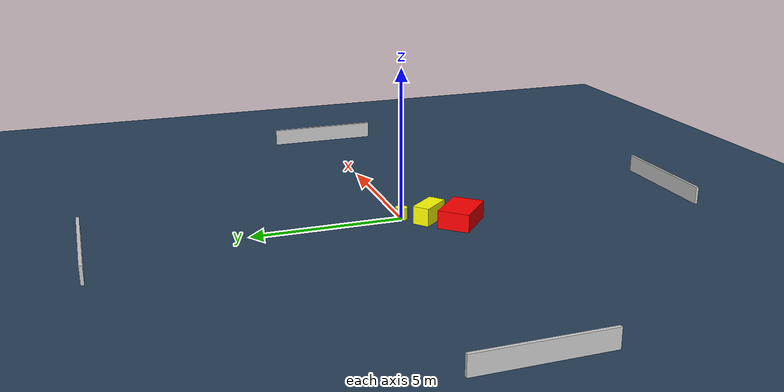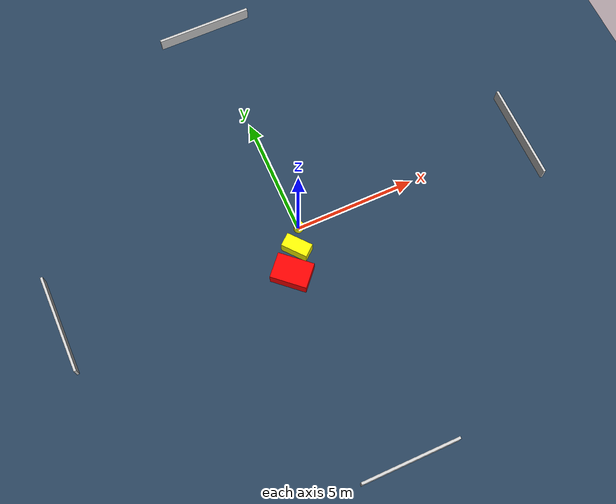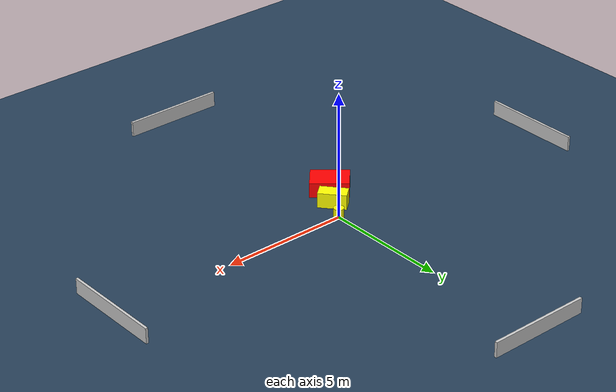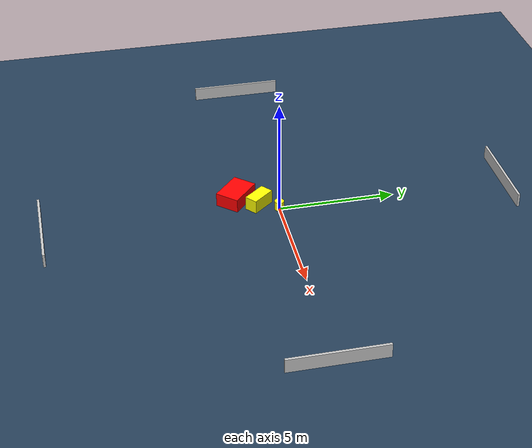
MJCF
<?xml version="1.0" ?>
<mujoco model="generated_environment">
  <option timestep="0.01" integrator="RK4" cone="elliptic"/>
  <default>
    <geom density="1"/>
  </default>
  <asset>
    <texture builtin="gradient" height="3072" name="skybox" rgb1="0.3 0.5 0.7" rgb2="0 0 0" type="skybox" width="512"/>
    <texture builtin="checker" height="300" name="groundplane" rgb1="0.2 0.3 0.4" rgb2="0.1 0.2 0.3" type="2d" width="300"/>
    <material name="groundplane" reflectance="0.2" texrepeat="5 5" texture="groundplane"/>
  </asset>
  <worldbody>
    <light dir="0 0 -1" directional="true" pos="0 0 1.5"/>
    <geom condim="3" friction="0.5 0.005 0.001" material="groundplane" name="floor" pos="0 0 0" size="0 0 0.05" type="plane"/>
    <body name="walls">
      <geom name="wall_1" condim="4" pos="-10.0 0.0 0.3" rgba="0.800000011920929 0.800000011920929 0.800000011920929 1.0" size="0.05 2.0 0.3" type="box"/>
      <geom name="wall_2" condim="4" pos="10.0 0.0 0.3" rgba="0.800000011920929 0.800000011920929 0.800000011920929 1.0" size="0.05 2.0 0.3" type="box"/>
      <geom name="wall_3" condim="4" pos="0.0 -10.0 0.3" rgba="0.800000011920929 0.800000011920929 0.800000011920929 1.0" size="2.0 0.05 0.3" type="box"/>
      <geom name="wall_4" condim="4" pos="0.0 10.0 0.3" rgba="0.800000011920929 0.800000011920929 0.800000011920929 1.0" size="2.0 0.05 0.3" type="box"/>
    </body>
    <body name="robot">
      <joint name="joint_x" type="slide" pos="0 0 0" axis="1 0 0"/>
      <joint name="joint_y" type="slide" pos="0 0 0" axis="0 1 0"/>
      <geom name="robot" type="cylinder" pos="0.0 0.0 0.2" size="0.2 0.2 0.0" mass="5.0" friction="1.0 0.005 0.0001" condim="4" rgba="1.0 1.0 0.0 1.0"/>
    </body>
    <body name="obstacle_1_movable">
      <geom name="obstacle_1_movable" condim="4" pos="-0.42469918109098276 -0.799984991029173 0.3" euler="0 0 39.742604736383775" friction="0.0 0.005 0.001" rgba="1.0 1.0 0.0 1.0" size="0.2828490171540911 0.547838656718419 0.3" type="box" mass="0.1"/>
      <joint type="free"/>
    </body>
    <body name="obstacle_2_static">
      <geom name="obstacle_2_static" condim="4" pos="-1.0173922704543374 -1.6819105454909138 0.3" euler="0 0 318.014930091148" friction="0.0 0.005 0.001" rgba="1.0 0.0 0.0 1.0" size="0.7451961108935807 0.5224417917162809 0.3" type="box"/>
    </body>
  </worldbody>
  <actuator>
    <motor name="actuator_x" joint="joint_x" gear="1" ctrlrange="-1 1"/>
    <motor name="actuator_y" joint="joint_y" gear="1" ctrlrange="-1 1"/>
  </actuator>
</mujoco>
